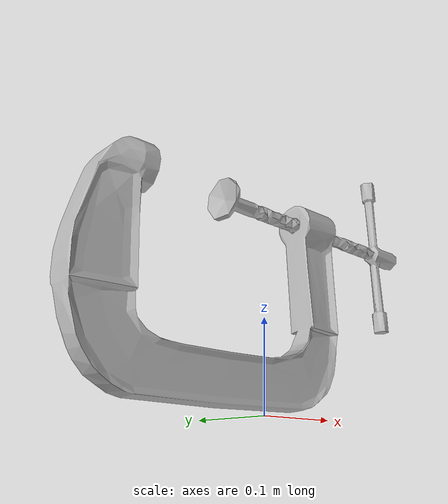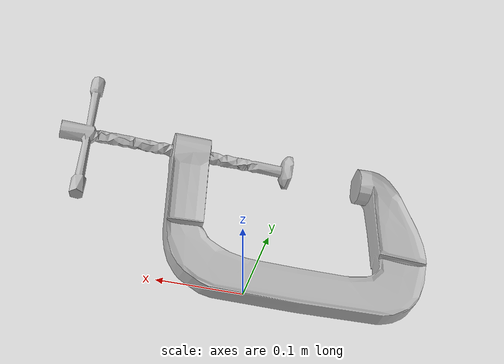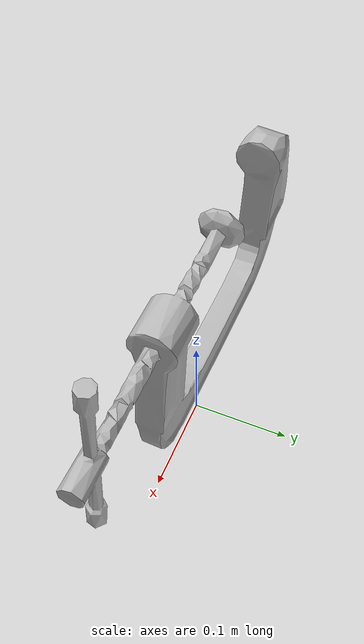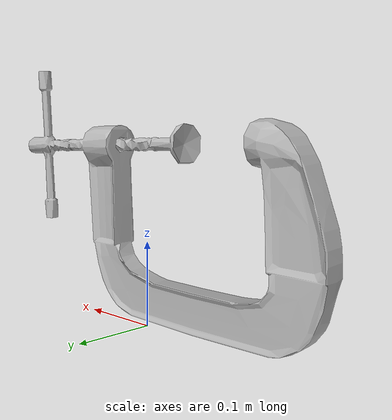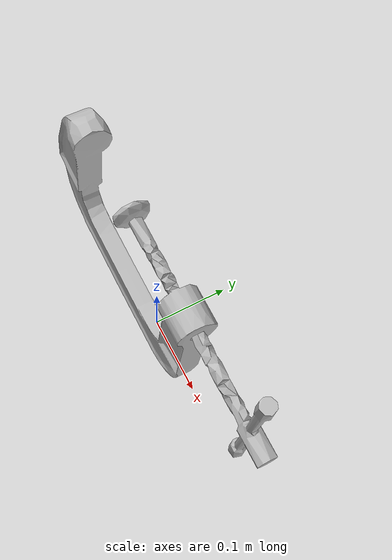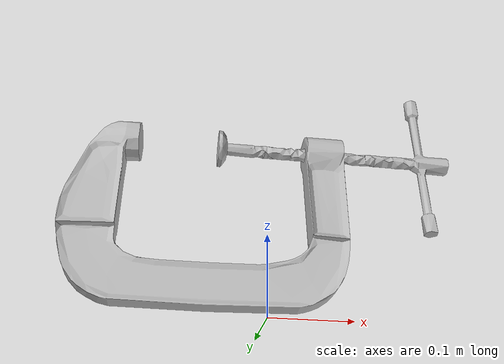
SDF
<?xml version="1.0" ?>
<sdf version="1.4">
  <model name="c_clamp">
    <pose>0 0 0.16  0 0 0</pose>
    <static>false</static>
    <link name="body">
      <inertial>
        <pose>-0.053216 -0.005553 -0.037320  0 0 0</pose>
        <mass>1</mass>
        <inertia>
          <ixx>4.93835e-3</ixx>
          <ixy>-0.01722e-3</ixy>
          <ixz>-1.89640e-3</ixz>
          <iyy>19.23337e-3</iyy>
          <iyz>-0.027796e-3</iyz>
          <izz>14.42026e-3</izz>
        </inertia>
      </inertial>
      <visual name="visual">
        <cast_shadows>true</cast_shadows>
        <geometry>
         <mesh>
           <uri>package://costar_objects/sdf/c_clamp/meshes/c-clamp.obj</uri>
         </mesh>
        </geometry>
      </visual>
      <collision name="collision">
        <surface>
          <friction>
            <ode>
              <mu>0.3</mu>
              <mu2>0.3</mu2>
            </ode>
          </friction>
        </surface>
        <geometry>
         <mesh>
           <uri>package://costar_objects/sdf/c_clamp/meshes/c-clamp.stl</uri>
         </mesh>
        </geometry>
      </collision>
    </link>
  </model>
</sdf>
